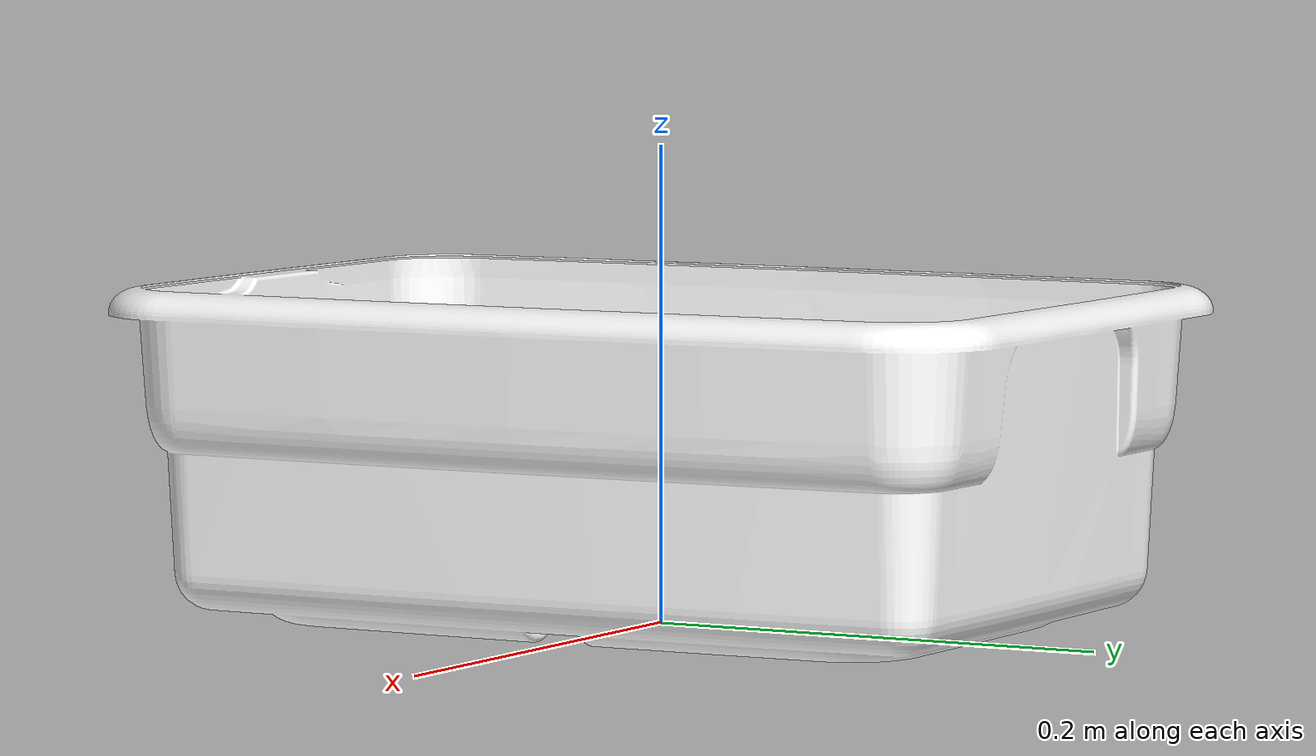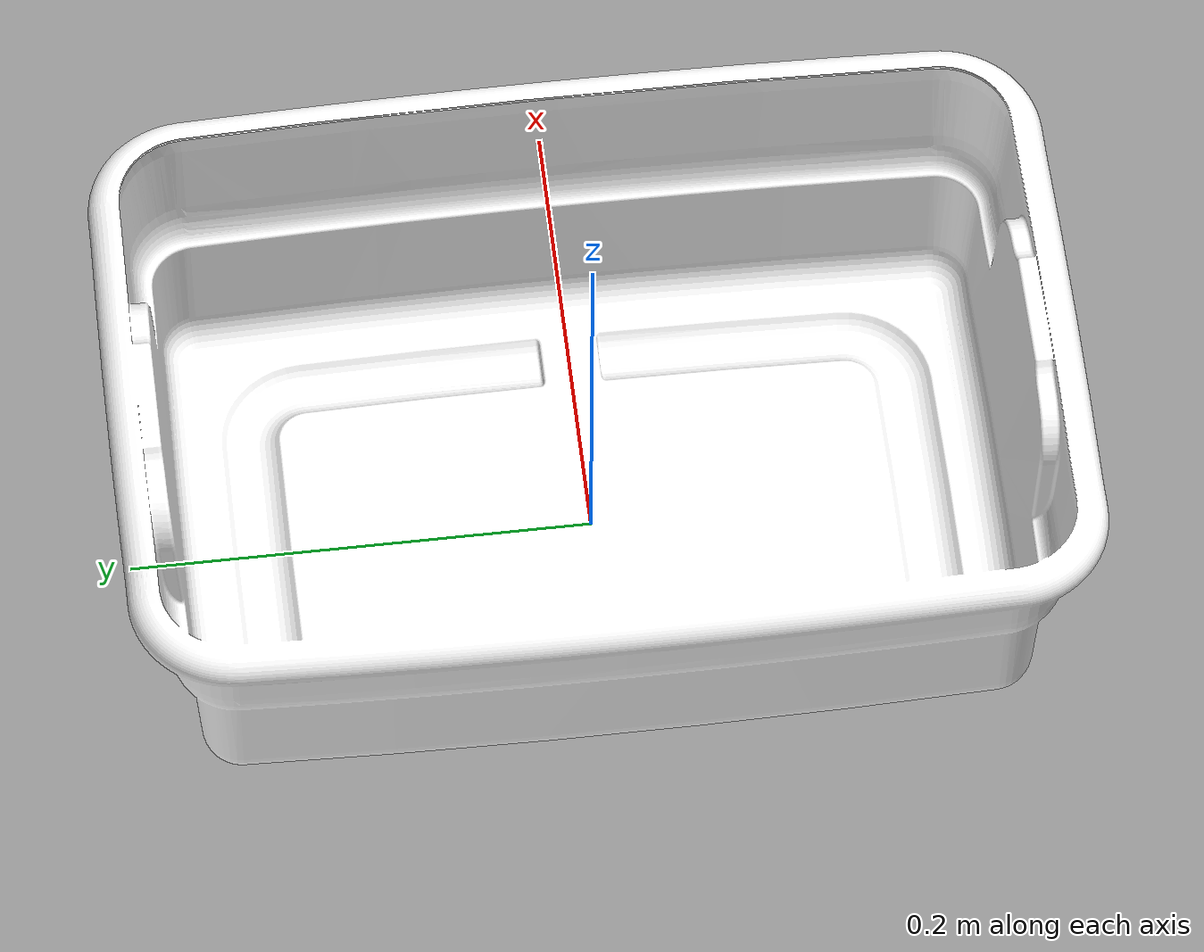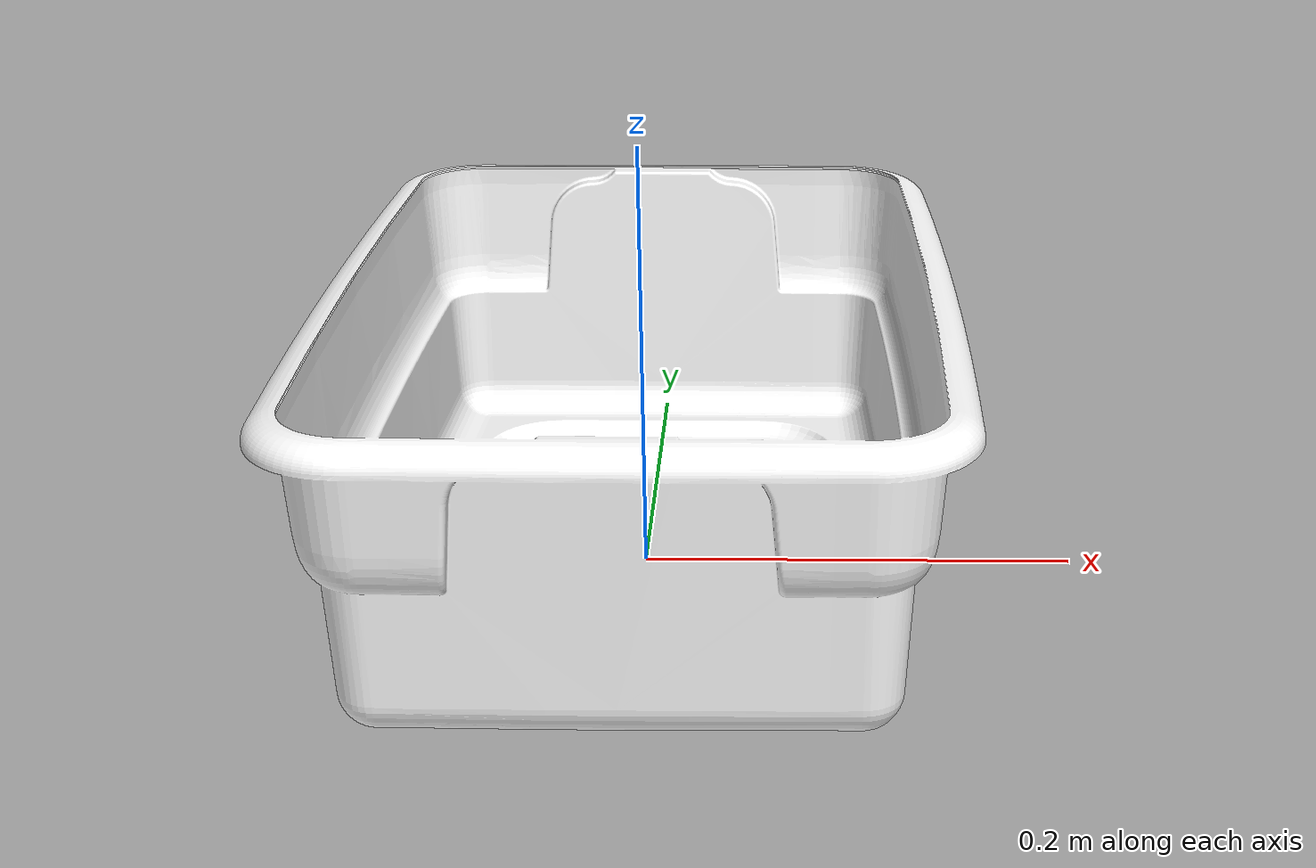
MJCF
<mujoco model="clearbox">
  <asset>
    <mesh file="meshes/clearbox.stl" name="clearbox" scale="1 1 1"/>
    <texture file="../textures/yellow-plaster.png" name="dark-wood"/>
    <material name="wood" reflectance="1.0"  texture="dark-wood" texuniform="true"/>
  </asset>
  <worldbody>
    <body name="clearbox">
      <body name="collision">
        <geom pos="0 0 0" mesh="clearbox" type="mesh" solimp="0.998 0.998 0.001" rgba="1 1 1 1" solref="0.001 1" density="500" friction="0.95 0.3 0.1" material="wood" group="0" condim="6"/>
      </body>
      <body name="visual">
        <geom pos="0 0 0" mesh="clearbox" type="mesh" density="0" rgba="1 1 0 1" group="0" condim="6"/>
        <geom pos="0 0 0" mesh="clearbox" type="mesh" rgba="0 1 0 1" conaffinity="0" contype="0" group="1" mass="0.0001"/>
      </body>
      <site rgba="0 0 0 0" size="0.005" pos="0 0 -0.06" name="bottom_site"/>
      <site rgba="0 0 0 0" size="0.005" pos="0 0 0.04" name="top_site"/>
      <site rgba="0 0 0 0" size="0.005" pos="0.025 0.025 0" name="horizontal_radius_site"/>
    </body>
  </worldbody>
</mujoco>
